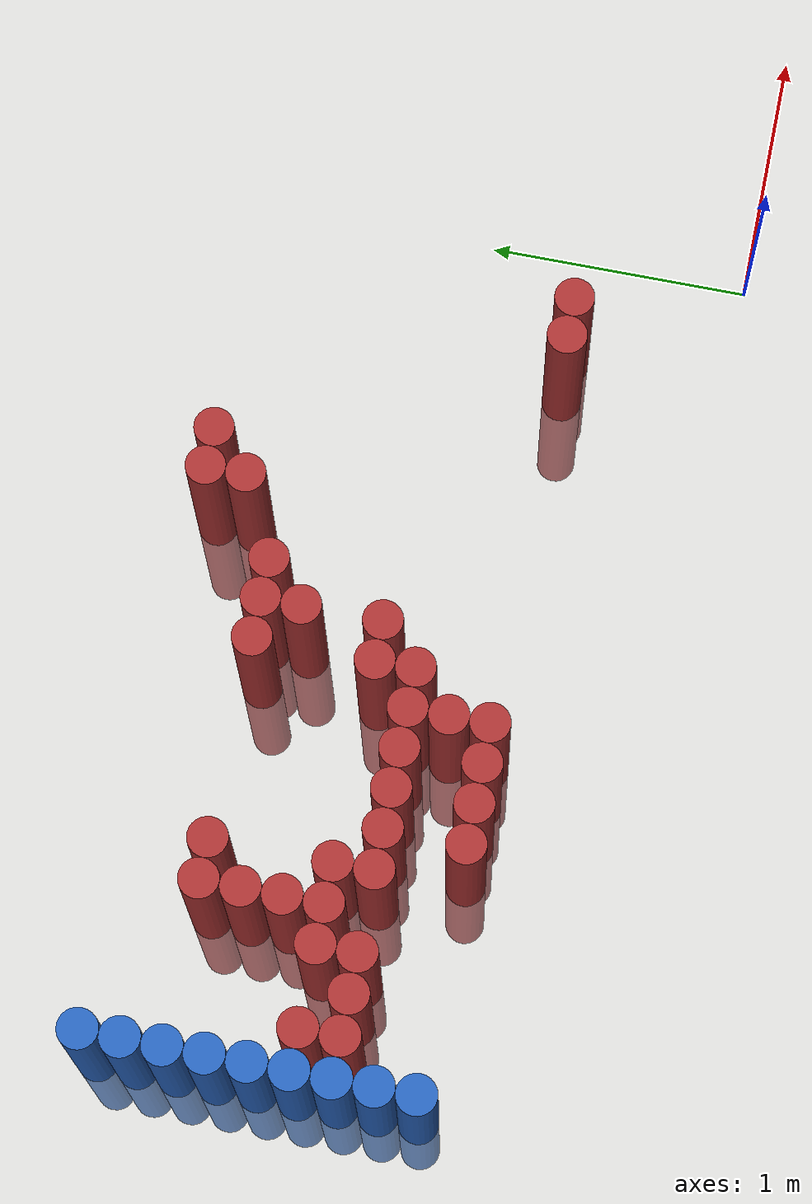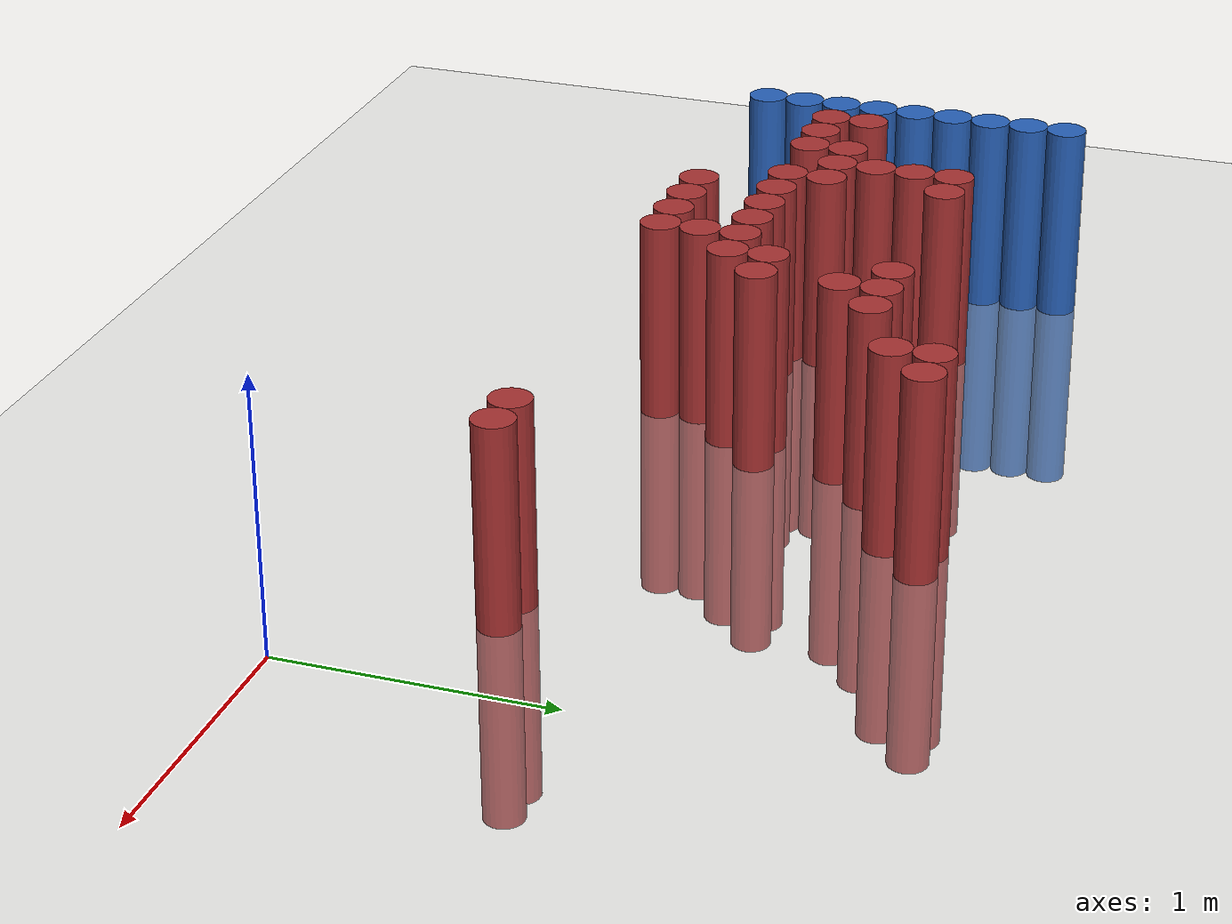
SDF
<sdf version="1.6">
 <world name="default">
  <model name="ground_plane">
   <static>1</static>
   <link name="link">
    <collision name="collision">
     <geometry><plane><normal>0 0 1</normal><size>100 100</size></plane></geometry>
     <surface><friction><ode><mu>100</mu><mu2>50</mu2></ode></friction></surface>
    </collision>
    <visual name="visual">
     <cast_shadows>0</cast_shadows>
     <geometry><plane><normal>0 0 1</normal><size>100 100</size></plane></geometry>
     <material>
      <script><uri>file://media/materials/scripts/gazebo.material</uri><name>Gazebo/Grey</name></script>
     </material>
    </visual>
   </link>
  </model>
  <model name="unit_cylinder_123">
   <static>1</static>
   <pose>-3.425000 0.625000 0.000000 0.000000 0.000000 0.000000</pose>
   <link name="link">
    <inertial>
     <mass>1</mass>
     <inertia><ixx>0.145833</ixx><ixy>0</ixy><ixz>0</ixz><iyy>0.145833</iyy><iyz>0</iyz><izz>0.125</izz></inertia>
    </inertial>
    <collision name="collision">
     <geometry><cylinder><radius>0.075000</radius><length>1.5</length></cylinder></geometry>
    </collision>
    <visual name="visual">
     <geometry><cylinder><radius>0.075000</radius><length>1.5</length></cylinder></geometry>
     <material>
      <ambient>0.152000 0.379000 0.720000 1</ambient>
      <diffuse>0.152000 0.379000 0.720000 1</diffuse>
     </material>
     <material>
      <script><name>Gazebo/Grey</name><uri>file://media/materials/scripts/gazebo.material</uri></script>
     </material>
    </visual>
   </link>
  </model>
  <model name="unit_cylinder_125">
   <static>1</static>
   <pose>-3.425000 0.775000 0.000000 0.000000 0.000000 0.000000</pose>
   <link name="link">
    <inertial>
     <mass>1</mass>
     <inertia><ixx>0.145833</ixx><ixy>0</ixy><ixz>0</ixz><iyy>0.145833</iyy><iyz>0</iyz><izz>0.125</izz></inertia>
    </inertial>
    <collision name="collision">
     <geometry><cylinder><radius>0.075000</radius><length>1.5</length></cylinder></geometry>
    </collision>
    <visual name="visual">
     <geometry><cylinder><radius>0.075000</radius><length>1.5</length></cylinder></geometry>
     <material>
      <ambient>0.152000 0.379000 0.720000 1</ambient>
      <diffuse>0.152000 0.379000 0.720000 1</diffuse>
     </material>
     <material>
      <script><name>Gazebo/Grey</name><uri>file://media/materials/scripts/gazebo.material</uri></script>
     </material>
    </visual>
   </link>
  </model>
  <model name="unit_cylinder_127">
   <static>1</static>
   <pose>-3.425000 0.925000 0.000000 0.000000 0.000000 0.000000</pose>
   <link name="link">
    <inertial>
     <mass>1</mass>
     <inertia><ixx>0.145833</ixx><ixy>0</ixy><ixz>0</ixz><iyy>0.145833</iyy><iyz>0</iyz><izz>0.125</izz></inertia>
    </inertial>
    <collision name="collision">
     <geometry><cylinder><radius>0.075000</radius><length>1.5</length></cylinder></geometry>
    </collision>
    <visual name="visual">
     <geometry><cylinder><radius>0.075000</radius><length>1.5</length></cylinder></geometry>
     <material>
      <ambient>0.152000 0.379000 0.720000 1</ambient>
      <diffuse>0.152000 0.379000 0.720000 1</diffuse>
     </material>
     <material>
      <script><name>Gazebo/Grey</name><uri>file://media/materials/scripts/gazebo.material</uri></script>
     </material>
    </visual>
   </link>
  </model>
  <model name="unit_cylinder_129">
   <static>1</static>
   <pose>-3.425000 1.075000 0.000000 0.000000 0.000000 0.000000</pose>
   <link name="link">
    <inertial>
     <mass>1</mass>
     <inertia><ixx>0.145833</ixx><ixy>0</ixy><ixz>0</ixz><iyy>0.145833</iyy><iyz>0</iyz><izz>0.125</izz></inertia>
    </inertial>
    <collision name="collision">
     <geometry><cylinder><radius>0.075000</radius><length>1.5</length></cylinder></geometry>
    </collision>
    <visual name="visual">
     <geometry><cylinder><radius>0.075000</radius><length>1.5</length></cylinder></geometry>
     <material>
      <ambient>0.152000 0.379000 0.720000 1</ambient>
      <diffuse>0.152000 0.379000 0.720000 1</diffuse>
     </material>
     <material>
      <script><name>Gazebo/Grey</name><uri>file://media/materials/scripts/gazebo.material</uri></script>
     </material>
    </visual>
   </link>
  </model>
  <model name="unit_cylinder_131">
   <static>1</static>
   <pose>-3.425000 1.225000 0.000000 0.000000 0.000000 0.000000</pose>
   <link name="link">
    <inertial>
     <mass>1</mass>
     <inertia><ixx>0.145833</ixx><ixy>0</ixy><ixz>0</ixz><iyy>0.145833</iyy><iyz>0</iyz><izz>0.125</izz></inertia>
    </inertial>
    <collision name="collision">
     <geometry><cylinder><radius>0.075000</radius><length>1.5</length></cylinder></geometry>
    </collision>
    <visual name="visual">
     <geometry><cylinder><radius>0.075000</radius><length>1.5</length></cylinder></geometry>
     <material>
      <ambient>0.152000 0.379000 0.720000 1</ambient>
      <diffuse>0.152000 0.379000 0.720000 1</diffuse>
     </material>
     <material>
      <script><name>Gazebo/Grey</name><uri>file://media/materials/scripts/gazebo.material</uri></script>
     </material>
    </visual>
   </link>
  </model>
  <model name="unit_cylinder_133">
   <static>1</static>
   <pose>-3.425000 1.375000 0.000000 0.000000 0.000000 0.000000</pose>
   <link name="link">
    <inertial>
     <mass>1</mass>
     <inertia><ixx>0.145833</ixx><ixy>0</ixy><ixz>0</ixz><iyy>0.145833</iyy><iyz>0</iyz><izz>0.125</izz></inertia>
    </inertial>
    <collision name="collision">
     <geometry><cylinder><radius>0.075000</radius><length>1.5</length></cylinder></geometry>
    </collision>
    <visual name="visual">
     <geometry><cylinder><radius>0.075000</radius><length>1.5</length></cylinder></geometry>
     <material>
      <ambient>0.152000 0.379000 0.720000 1</ambient>
      <diffuse>0.152000 0.379000 0.720000 1</diffuse>
     </material>
     <material>
      <script><name>Gazebo/Grey</name><uri>file://media/materials/scripts/gazebo.material</uri></script>
     </material>
    </visual>
   </link>
  </model>
  <model name="unit_cylinder_135">
   <static>1</static>
   <pose>-3.425000 1.525000 0.000000 0.000000 0.000000 0.000000</pose>
   <link name="link">
    <inertial>
     <mass>1</mass>
     <inertia><ixx>0.145833</ixx><ixy>0</ixy><ixz>0</ixz><iyy>0.145833</iyy><iyz>0</iyz><izz>0.125</izz></inertia>
    </inertial>
    <collision name="collision">
     <geometry><cylinder><radius>0.075000</radius><length>1.5</length></cylinder></geometry>
    </collision>
    <visual name="visual">
     <geometry><cylinder><radius>0.075000</radius><length>1.5</length></cylinder></geometry>
     <material>
      <ambient>0.152000 0.379000 0.720000 1</ambient>
      <diffuse>0.152000 0.379000 0.720000 1</diffuse>
     </material>
     <material>
      <script><name>Gazebo/Grey</name><uri>file://media/materials/scripts/gazebo.material</uri></script>
     </material>
    </visual>
   </link>
  </model>
  <model name="unit_cylinder_137">
   <static>1</static>
   <pose>-3.425000 1.675000 0.000000 0.000000 0.000000 0.000000</pose>
   <link name="link">
    <inertial>
     <mass>1</mass>
     <inertia><ixx>0.145833</ixx><ixy>0</ixy><ixz>0</ixz><iyy>0.145833</iyy><iyz>0</iyz><izz>0.125</izz></inertia>
    </inertial>
    <collision name="collision">
     <geometry><cylinder><radius>0.075000</radius><length>1.5</length></cylinder></geometry>
    </collision>
    <visual name="visual">
     <geometry><cylinder><radius>0.075000</radius><length>1.5</length></cylinder></geometry>
     <material>
      <ambient>0.152000 0.379000 0.720000 1</ambient>
      <diffuse>0.152000 0.379000 0.720000 1</diffuse>
     </material>
     <material>
      <script><name>Gazebo/Grey</name><uri>file://media/materials/scripts/gazebo.material</uri></script>
     </material>
    </visual>
   </link>
  </model>
  <model name="unit_cylinder_139">
   <static>1</static>
   <pose>-3.425000 1.825000 0.000000 0.000000 0.000000 0.000000</pose>
   <link name="link">
    <inertial>
     <mass>1</mass>
     <inertia><ixx>0.145833</ixx><ixy>0</ixy><ixz>0</ixz><iyy>0.145833</iyy><iyz>0</iyz><izz>0.125</izz></inertia>
    </inertial>
    <collision name="collision">
     <geometry><cylinder><radius>0.075000</radius><length>1.5</length></cylinder></geometry>
    </collision>
    <visual name="visual">
     <geometry><cylinder><radius>0.075000</radius><length>1.5</length></cylinder></geometry>
     <material>
      <ambient>0.152000 0.379000 0.720000 1</ambient>
      <diffuse>0.152000 0.379000 0.720000 1</diffuse>
     </material>
     <material>
      <script><name>Gazebo/Grey</name><uri>file://media/materials/scripts/gazebo.material</uri></script>
     </material>
    </visual>
   </link>
  </model>
  <model name="unit_cylinder_225">
   <static>1</static>
   <pose>-3.425000 0.625000 0.000000 0.000000 0.000000 0.000000</pose>
   <link name="link">
    <inertial>
     <mass>1</mass>
     <inertia><ixx>0.145833</ixx><ixy>0</ixy><ixz>0</ixz><iyy>0.145833</iyy><iyz>0</iyz><izz>0.125</izz></inertia>
    </inertial>
    <collision name="collision">
     <geometry><cylinder><radius>0.075000</radius><length>1.5</length></cylinder></geometry>
    </collision>
    <visual name="visual">
     <geometry><cylinder><radius>0.075000</radius><length>1.5</length></cylinder></geometry>
     <material>
      <ambient>0.152000 0.379000 0.720000 1</ambient>
      <diffuse>0.152000 0.379000 0.720000 1</diffuse>
     </material>
     <material>
      <script><name>Gazebo/Grey</name><uri>file://media/materials/scripts/gazebo.material</uri></script>
     </material>
    </visual>
   </link>
  </model>
  <model name="unit_cylinder_226">
   <static>1</static>
   <pose>-3.425000 0.775000 0.000000 0.000000 0.000000 0.000000</pose>
   <link name="link">
    <inertial>
     <mass>1</mass>
     <inertia><ixx>0.145833</ixx><ixy>0</ixy><ixz>0</ixz><iyy>0.145833</iyy><iyz>0</iyz><izz>0.125</izz></inertia>
    </inertial>
    <collision name="collision">
     <geometry><cylinder><radius>0.075000</radius><length>1.5</length></cylinder></geometry>
    </collision>
    <visual name="visual">
     <geometry><cylinder><radius>0.075000</radius><length>1.5</length></cylinder></geometry>
     <material>
      <ambient>0.152000 0.379000 0.720000 1</ambient>
      <diffuse>0.152000 0.379000 0.720000 1</diffuse>
     </material>
     <material>
      <script><name>Gazebo/Grey</name><uri>file://media/materials/scripts/gazebo.material</uri></script>
     </material>
    </visual>
   </link>
  </model>
  <model name="unit_cylinder_227">
   <static>1</static>
   <pose>-3.425000 0.925000 0.000000 0.000000 0.000000 0.000000</pose>
   <link name="link">
    <inertial>
     <mass>1</mass>
     <inertia><ixx>0.145833</ixx><ixy>0</ixy><ixz>0</ixz><iyy>0.145833</iyy><iyz>0</iyz><izz>0.125</izz></inertia>
    </inertial>
    <collision name="collision">
     <geometry><cylinder><radius>0.075000</radius><length>1.5</length></cylinder></geometry>
    </collision>
    <visual name="visual">
     <geometry><cylinder><radius>0.075000</radius><length>1.5</length></cylinder></geometry>
     <material>
      <ambient>0.152000 0.379000 0.720000 1</ambient>
      <diffuse>0.152000 0.379000 0.720000 1</diffuse>
     </material>
     <material>
      <script><name>Gazebo/Grey</name><uri>file://media/materials/scripts/gazebo.material</uri></script>
     </material>
    </visual>
   </link>
  </model>
  <model name="unit_cylinder_228">
   <static>1</static>
   <pose>-3.425000 1.075000 0.000000 0.000000 0.000000 0.000000</pose>
   <link name="link">
    <inertial>
     <mass>1</mass>
     <inertia><ixx>0.145833</ixx><ixy>0</ixy><ixz>0</ixz><iyy>0.145833</iyy><iyz>0</iyz><izz>0.125</izz></inertia>
    </inertial>
    <collision name="collision">
     <geometry><cylinder><radius>0.075000</radius><length>1.5</length></cylinder></geometry>
    </collision>
    <visual name="visual">
     <geometry><cylinder><radius>0.075000</radius><length>1.5</length></cylinder></geometry>
     <material>
      <ambient>0.152000 0.379000 0.720000 1</ambient>
      <diffuse>0.152000 0.379000 0.720000 1</diffuse>
     </material>
     <material>
      <script><name>Gazebo/Grey</name><uri>file://media/materials/scripts/gazebo.material</uri></script>
     </material>
    </visual>
   </link>
  </model>
  <model name="unit_cylinder_229">
   <static>1</static>
   <pose>-3.425000 1.225000 0.000000 0.000000 0.000000 0.000000</pose>
   <link name="link">
    <inertial>
     <mass>1</mass>
     <inertia><ixx>0.145833</ixx><ixy>0</ixy><ixz>0</ixz><iyy>0.145833</iyy><iyz>0</iyz><izz>0.125</izz></inertia>
    </inertial>
    <collision name="collision">
     <geometry><cylinder><radius>0.075000</radius><length>1.5</length></cylinder></geometry>
    </collision>
    <visual name="visual">
     <geometry><cylinder><radius>0.075000</radius><length>1.5</length></cylinder></geometry>
     <material>
      <ambient>0.152000 0.379000 0.720000 1</ambient>
      <diffuse>0.152000 0.379000 0.720000 1</diffuse>
     </material>
     <material>
      <script><name>Gazebo/Grey</name><uri>file://media/materials/scripts/gazebo.material</uri></script>
     </material>
    </visual>
   </link>
  </model>
  <model name="unit_cylinder_230">
   <static>1</static>
   <pose>-3.425000 1.375000 0.000000 0.000000 0.000000 0.000000</pose>
   <link name="link">
    <inertial>
     <mass>1</mass>
     <inertia><ixx>0.145833</ixx><ixy>0</ixy><ixz>0</ixz><iyy>0.145833</iyy><iyz>0</iyz><izz>0.125</izz></inertia>
    </inertial>
    <collision name="collision">
     <geometry><cylinder><radius>0.075000</radius><length>1.5</length></cylinder></geometry>
    </collision>
    <visual name="visual">
     <geometry><cylinder><radius>0.075000</radius><length>1.5</length></cylinder></geometry>
     <material>
      <ambient>0.152000 0.379000 0.720000 1</ambient>
      <diffuse>0.152000 0.379000 0.720000 1</diffuse>
     </material>
     <material>
      <script><name>Gazebo/Grey</name><uri>file://media/materials/scripts/gazebo.material</uri></script>
     </material>
    </visual>
   </link>
  </model>
  <model name="unit_cylinder_231">
   <static>1</static>
   <pose>-3.425000 1.525000 0.000000 0.000000 0.000000 0.000000</pose>
   <link name="link">
    <inertial>
     <mass>1</mass>
     <inertia><ixx>0.145833</ixx><ixy>0</ixy><ixz>0</ixz><iyy>0.145833</iyy><iyz>0</iyz><izz>0.125</izz></inertia>
    </inertial>
    <collision name="collision">
     <geometry><cylinder><radius>0.075000</radius><length>1.5</length></cylinder></geometry>
    </collision>
    <visual name="visual">
     <geometry><cylinder><radius>0.075000</radius><length>1.5</length></cylinder></geometry>
     <material>
      <ambient>0.152000 0.379000 0.720000 1</ambient>
      <diffuse>0.152000 0.379000 0.720000 1</diffuse>
     </material>
     <material>
      <script><name>Gazebo/Grey</name><uri>file://media/materials/scripts/gazebo.material</uri></script>
     </material>
    </visual>
   </link>
  </model>
  <model name="unit_cylinder_232">
   <static>1</static>
   <pose>-3.425000 1.675000 0.000000 0.000000 0.000000 0.000000</pose>
   <link name="link">
    <inertial>
     <mass>1</mass>
     <inertia><ixx>0.145833</ixx><ixy>0</ixy><ixz>0</ixz><iyy>0.145833</iyy><iyz>0</iyz><izz>0.125</izz></inertia>
    </inertial>
    <collision name="collision">
     <geometry><cylinder><radius>0.075000</radius><length>1.5</length></cylinder></geometry>
    </collision>
    <visual name="visual">
     <geometry><cylinder><radius>0.075000</radius><length>1.5</length></cylinder></geometry>
     <material>
      <ambient>0.152000 0.379000 0.720000 1</ambient>
      <diffuse>0.152000 0.379000 0.720000 1</diffuse>
     </material>
     <material>
      <script><name>Gazebo/Grey</name><uri>file://media/materials/scripts/gazebo.material</uri></script>
     </material>
    </visual>
   </link>
  </model>
  <model name="unit_cylinder_233">
   <static>1</static>
   <pose>-3.425000 1.825000 0.000000 0.000000 0.000000 0.000000</pose>
   <link name="link">
    <inertial>
     <mass>1</mass>
     <inertia><ixx>0.145833</ixx><ixy>0</ixy><ixz>0</ixz><iyy>0.145833</iyy><iyz>0</iyz><izz>0.125</izz></inertia>
    </inertial>
    <collision name="collision">
     <geometry><cylinder><radius>0.075000</radius><length>1.5</length></cylinder></geometry>
    </collision>
    <visual name="visual">
     <geometry><cylinder><radius>0.075000</radius><length>1.5</length></cylinder></geometry>
     <material>
      <ambient>0.152000 0.379000 0.720000 1</ambient>
      <diffuse>0.152000 0.379000 0.720000 1</diffuse>
     </material>
     <material>
      <script><name>Gazebo/Grey</name><uri>file://media/materials/scripts/gazebo.material</uri></script>
     </material>
    </visual>
   </link>
  </model>
  <model name="unit_cylinder_266">
   <static>1</static>
   <pose>-3.275000 0.925000 0.000000 0.000000 0.000000 0.000000</pose>
   <link name="link">
    <inertial>
     <mass>1</mass>
     <inertia><ixx>0.145833</ixx><ixy>0</ixy><ixz>0</ixz><iyy>0.145833</iyy><iyz>0</iyz><izz>0.125</izz></inertia>
    </inertial>
    <collision name="collision">
     <geometry><cylinder><radius>0.075000</radius><length>1.5</length></cylinder></geometry>
    </collision>
    <visual name="visual">
     <geometry><cylinder><radius>0.075000</radius><length>1.5</length></cylinder></geometry>
     <material>
      <ambient>0.648000 0.192000 0.192000 1</ambient>
      <diffuse>0.648000 0.192000 0.192000 1</diffuse>
     </material>
     <material>
      <script><name>Gazebo/Grey</name><uri>file://media/materials/scripts/gazebo.material</uri></script>
     </material>
    </visual>
   </link>
  </model>
  <model name="unit_cylinder_267">
   <static>1</static>
   <pose>-3.275000 1.075000 0.000000 0.000000 0.000000 0.000000</pose>
   <link name="link">
    <inertial>
     <mass>1</mass>
     <inertia><ixx>0.145833</ixx><ixy>0</ixy><ixz>0</ixz><iyy>0.145833</iyy><iyz>0</iyz><izz>0.125</izz></inertia>
    </inertial>
    <collision name="collision">
     <geometry><cylinder><radius>0.075000</radius><length>1.5</length></cylinder></geometry>
    </collision>
    <visual name="visual">
     <geometry><cylinder><radius>0.075000</radius><length>1.5</length></cylinder></geometry>
     <material>
      <ambient>0.648000 0.192000 0.192000 1</ambient>
      <diffuse>0.648000 0.192000 0.192000 1</diffuse>
     </material>
     <material>
      <script><name>Gazebo/Grey</name><uri>file://media/materials/scripts/gazebo.material</uri></script>
     </material>
    </visual>
   </link>
  </model>
  <model name="unit_cylinder_285">
   <static>1</static>
   <pose>-3.125000 0.925000 0.000000 0.000000 0.000000 0.000000</pose>
   <link name="link">
    <inertial>
     <mass>1</mass>
     <inertia><ixx>0.145833</ixx><ixy>0</ixy><ixz>0</ixz><iyy>0.145833</iyy><iyz>0</iyz><izz>0.125</izz></inertia>
    </inertial>
    <collision name="collision">
     <geometry><cylinder><radius>0.075000</radius><length>1.5</length></cylinder></geometry>
    </collision>
    <visual name="visual">
     <geometry><cylinder><radius>0.075000</radius><length>1.5</length></cylinder></geometry>
     <material>
      <ambient>0.648000 0.192000 0.192000 1</ambient>
      <diffuse>0.648000 0.192000 0.192000 1</diffuse>
     </material>
     <material>
      <script><name>Gazebo/Grey</name><uri>file://media/materials/scripts/gazebo.material</uri></script>
     </material>
    </visual>
   </link>
  </model>
  <model name="unit_cylinder_291">
   <static>1</static>
   <pose>-2.975000 0.925000 0.000000 0.000000 0.000000 0.000000</pose>
   <link name="link">
    <inertial>
     <mass>1</mass>
     <inertia><ixx>0.145833</ixx><ixy>0</ixy><ixz>0</ixz><iyy>0.145833</iyy><iyz>0</iyz><izz>0.125</izz></inertia>
    </inertial>
    <collision name="collision">
     <geometry><cylinder><radius>0.075000</radius><length>1.5</length></cylinder></geometry>
    </collision>
    <visual name="visual">
     <geometry><cylinder><radius>0.075000</radius><length>1.5</length></cylinder></geometry>
     <material>
      <ambient>0.648000 0.192000 0.192000 1</ambient>
      <diffuse>0.648000 0.192000 0.192000 1</diffuse>
     </material>
     <material>
      <script><name>Gazebo/Grey</name><uri>file://media/materials/scripts/gazebo.material</uri></script>
     </material>
    </visual>
   </link>
  </model>
  <model name="unit_cylinder_292">
   <static>1</static>
   <pose>-2.975000 1.075000 0.000000 0.000000 0.000000 0.000000</pose>
   <link name="link">
    <inertial>
     <mass>1</mass>
     <inertia><ixx>0.145833</ixx><ixy>0</ixy><ixz>0</ixz><iyy>0.145833</iyy><iyz>0</iyz><izz>0.125</izz></inertia>
    </inertial>
    <collision name="collision">
     <geometry><cylinder><radius>0.075000</radius><length>1.5</length></cylinder></geometry>
    </collision>
    <visual name="visual">
     <geometry><cylinder><radius>0.075000</radius><length>1.5</length></cylinder></geometry>
     <material>
      <ambient>0.648000 0.192000 0.192000 1</ambient>
      <diffuse>0.648000 0.192000 0.192000 1</diffuse>
     </material>
     <material>
      <script><name>Gazebo/Grey</name><uri>file://media/materials/scripts/gazebo.material</uri></script>
     </material>
    </visual>
   </link>
  </model>
  <model name="unit_cylinder_299">
   <static>1</static>
   <pose>-2.825000 1.075000 0.000000 0.000000 0.000000 0.000000</pose>
   <link name="link">
    <inertial>
     <mass>1</mass>
     <inertia><ixx>0.145833</ixx><ixy>0</ixy><ixz>0</ixz><iyy>0.145833</iyy><iyz>0</iyz><izz>0.125</izz></inertia>
    </inertial>
    <collision name="collision">
     <geometry><cylinder><radius>0.075000</radius><length>1.5</length></cylinder></geometry>
    </collision>
    <visual name="visual">
     <geometry><cylinder><radius>0.075000</radius><length>1.5</length></cylinder></geometry>
     <material>
      <ambient>0.648000 0.192000 0.192000 1</ambient>
      <diffuse>0.648000 0.192000 0.192000 1</diffuse>
     </material>
     <material>
      <script><name>Gazebo/Grey</name><uri>file://media/materials/scripts/gazebo.material</uri></script>
     </material>
    </visual>
   </link>
  </model>
  <model name="unit_cylinder_300">
   <static>1</static>
   <pose>-2.825000 1.225000 0.000000 0.000000 0.000000 0.000000</pose>
   <link name="link">
    <inertial>
     <mass>1</mass>
     <inertia><ixx>0.145833</ixx><ixy>0</ixy><ixz>0</ixz><iyy>0.145833</iyy><iyz>0</iyz><izz>0.125</izz></inertia>
    </inertial>
    <collision name="collision">
     <geometry><cylinder><radius>0.075000</radius><length>1.5</length></cylinder></geometry>
    </collision>
    <visual name="visual">
     <geometry><cylinder><radius>0.075000</radius><length>1.5</length></cylinder></geometry>
     <material>
      <ambient>0.648000 0.192000 0.192000 1</ambient>
      <diffuse>0.648000 0.192000 0.192000 1</diffuse>
     </material>
     <material>
      <script><name>Gazebo/Grey</name><uri>file://media/materials/scripts/gazebo.material</uri></script>
     </material>
    </visual>
   </link>
  </model>
  <model name="unit_cylinder_301">
   <static>1</static>
   <pose>-2.825000 1.375000 0.000000 0.000000 0.000000 0.000000</pose>
   <link name="link">
    <inertial>
     <mass>1</mass>
     <inertia><ixx>0.145833</ixx><ixy>0</ixy><ixz>0</ixz><iyy>0.145833</iyy><iyz>0</iyz><izz>0.125</izz></inertia>
    </inertial>
    <collision name="collision">
     <geometry><cylinder><radius>0.075000</radius><length>1.5</length></cylinder></geometry>
    </collision>
    <visual name="visual">
     <geometry><cylinder><radius>0.075000</radius><length>1.5</length></cylinder></geometry>
     <material>
      <ambient>0.648000 0.192000 0.192000 1</ambient>
      <diffuse>0.648000 0.192000 0.192000 1</diffuse>
     </material>
     <material>
      <script><name>Gazebo/Grey</name><uri>file://media/materials/scripts/gazebo.material</uri></script>
     </material>
    </visual>
   </link>
  </model>
  <model name="unit_cylinder_302">
   <static>1</static>
   <pose>-2.825000 1.525000 0.000000 0.000000 0.000000 0.000000</pose>
   <link name="link">
    <inertial>
     <mass>1</mass>
     <inertia><ixx>0.145833</ixx><ixy>0</ixy><ixz>0</ixz><iyy>0.145833</iyy><iyz>0</iyz><izz>0.125</izz></inertia>
    </inertial>
    <collision name="collision">
     <geometry><cylinder><radius>0.075000</radius><length>1.5</length></cylinder></geometry>
    </collision>
    <visual name="visual">
     <geometry><cylinder><radius>0.075000</radius><length>1.5</length></cylinder></geometry>
     <material>
      <ambient>0.648000 0.192000 0.192000 1</ambient>
      <diffuse>0.648000 0.192000 0.192000 1</diffuse>
     </material>
     <material>
      <script><name>Gazebo/Grey</name><uri>file://media/materials/scripts/gazebo.material</uri></script>
     </material>
    </visual>
   </link>
  </model>
  <model name="unit_cylinder_310">
   <static>1</static>
   <pose>-2.675000 0.925000 0.000000 0.000000 0.000000 0.000000</pose>
   <link name="link">
    <inertial>
     <mass>1</mass>
     <inertia><ixx>0.145833</ixx><ixy>0</ixy><ixz>0</ixz><iyy>0.145833</iyy><iyz>0</iyz><izz>0.125</izz></inertia>
    </inertial>
    <collision name="collision">
     <geometry><cylinder><radius>0.075000</radius><length>1.5</length></cylinder></geometry>
    </collision>
    <visual name="visual">
     <geometry><cylinder><radius>0.075000</radius><length>1.5</length></cylinder></geometry>
     <material>
      <ambient>0.648000 0.192000 0.192000 1</ambient>
      <diffuse>0.648000 0.192000 0.192000 1</diffuse>
     </material>
     <material>
      <script><name>Gazebo/Grey</name><uri>file://media/materials/scripts/gazebo.material</uri></script>
     </material>
    </visual>
   </link>
  </model>
  <model name="unit_cylinder_311">
   <static>1</static>
   <pose>-2.675000 1.075000 0.000000 0.000000 0.000000 0.000000</pose>
   <link name="link">
    <inertial>
     <mass>1</mass>
     <inertia><ixx>0.145833</ixx><ixy>0</ixy><ixz>0</ixz><iyy>0.145833</iyy><iyz>0</iyz><izz>0.125</izz></inertia>
    </inertial>
    <collision name="collision">
     <geometry><cylinder><radius>0.075000</radius><length>1.5</length></cylinder></geometry>
    </collision>
    <visual name="visual">
     <geometry><cylinder><radius>0.075000</radius><length>1.5</length></cylinder></geometry>
     <material>
      <ambient>0.648000 0.192000 0.192000 1</ambient>
      <diffuse>0.648000 0.192000 0.192000 1</diffuse>
     </material>
     <material>
      <script><name>Gazebo/Grey</name><uri>file://media/materials/scripts/gazebo.material</uri></script>
     </material>
    </visual>
   </link>
  </model>
  <model name="unit_cylinder_312">
   <static>1</static>
   <pose>-2.675000 1.525000 0.000000 0.000000 0.000000 0.000000</pose>
   <link name="link">
    <inertial>
     <mass>1</mass>
     <inertia><ixx>0.145833</ixx><ixy>0</ixy><ixz>0</ixz><iyy>0.145833</iyy><iyz>0</iyz><izz>0.125</izz></inertia>
    </inertial>
    <collision name="collision">
     <geometry><cylinder><radius>0.075000</radius><length>1.5</length></cylinder></geometry>
    </collision>
    <visual name="visual">
     <geometry><cylinder><radius>0.075000</radius><length>1.5</length></cylinder></geometry>
     <material>
      <ambient>0.648000 0.192000 0.192000 1</ambient>
      <diffuse>0.648000 0.192000 0.192000 1</diffuse>
     </material>
     <material>
      <script><name>Gazebo/Grey</name><uri>file://media/materials/scripts/gazebo.material</uri></script>
     </material>
    </visual>
   </link>
  </model>
  <model name="unit_cylinder_319">
   <static>1</static>
   <pose>-2.525000 0.625000 0.000000 0.000000 0.000000 0.000000</pose>
   <link name="link">
    <inertial>
     <mass>1</mass>
     <inertia><ixx>0.145833</ixx><ixy>0</ixy><ixz>0</ixz><iyy>0.145833</iyy><iyz>0</iyz><izz>0.125</izz></inertia>
    </inertial>
    <collision name="collision">
     <geometry><cylinder><radius>0.075000</radius><length>1.5</length></cylinder></geometry>
    </collision>
    <visual name="visual">
     <geometry><cylinder><radius>0.075000</radius><length>1.5</length></cylinder></geometry>
     <material>
      <ambient>0.648000 0.192000 0.192000 1</ambient>
      <diffuse>0.648000 0.192000 0.192000 1</diffuse>
     </material>
     <material>
      <script><name>Gazebo/Grey</name><uri>file://media/materials/scripts/gazebo.material</uri></script>
     </material>
    </visual>
   </link>
  </model>
  <model name="unit_cylinder_320">
   <static>1</static>
   <pose>-2.525000 0.925000 0.000000 0.000000 0.000000 0.000000</pose>
   <link name="link">
    <inertial>
     <mass>1</mass>
     <inertia><ixx>0.145833</ixx><ixy>0</ixy><ixz>0</ixz><iyy>0.145833</iyy><iyz>0</iyz><izz>0.125</izz></inertia>
    </inertial>
    <collision name="collision">
     <geometry><cylinder><radius>0.075000</radius><length>1.5</length></cylinder></geometry>
    </collision>
    <visual name="visual">
     <geometry><cylinder><radius>0.075000</radius><length>1.5</length></cylinder></geometry>
     <material>
      <ambient>0.648000 0.192000 0.192000 1</ambient>
      <diffuse>0.648000 0.192000 0.192000 1</diffuse>
     </material>
     <material>
      <script><name>Gazebo/Grey</name><uri>file://media/materials/scripts/gazebo.material</uri></script>
     </material>
    </visual>
   </link>
  </model>
  <model name="unit_cylinder_325">
   <static>1</static>
   <pose>-2.375000 0.625000 0.000000 0.000000 0.000000 0.000000</pose>
   <link name="link">
    <inertial>
     <mass>1</mass>
     <inertia><ixx>0.145833</ixx><ixy>0</ixy><ixz>0</ixz><iyy>0.145833</iyy><iyz>0</iyz><izz>0.125</izz></inertia>
    </inertial>
    <collision name="collision">
     <geometry><cylinder><radius>0.075000</radius><length>1.5</length></cylinder></geometry>
    </collision>
    <visual name="visual">
     <geometry><cylinder><radius>0.075000</radius><length>1.5</length></cylinder></geometry>
     <material>
      <ambient>0.648000 0.192000 0.192000 1</ambient>
      <diffuse>0.648000 0.192000 0.192000 1</diffuse>
     </material>
     <material>
      <script><name>Gazebo/Grey</name><uri>file://media/materials/scripts/gazebo.material</uri></script>
     </material>
    </visual>
   </link>
  </model>
  <model name="unit_cylinder_326">
   <static>1</static>
   <pose>-2.375000 0.925000 0.000000 0.000000 0.000000 0.000000</pose>
   <link name="link">
    <inertial>
     <mass>1</mass>
     <inertia><ixx>0.145833</ixx><ixy>0</ixy><ixz>0</ixz><iyy>0.145833</iyy><iyz>0</iyz><izz>0.125</izz></inertia>
    </inertial>
    <collision name="collision">
     <geometry><cylinder><radius>0.075000</radius><length>1.5</length></cylinder></geometry>
    </collision>
    <visual name="visual">
     <geometry><cylinder><radius>0.075000</radius><length>1.5</length></cylinder></geometry>
     <material>
      <ambient>0.648000 0.192000 0.192000 1</ambient>
      <diffuse>0.648000 0.192000 0.192000 1</diffuse>
     </material>
     <material>
      <script><name>Gazebo/Grey</name><uri>file://media/materials/scripts/gazebo.material</uri></script>
     </material>
    </visual>
   </link>
  </model>
  <model name="unit_cylinder_332">
   <static>1</static>
   <pose>-2.225000 0.625000 0.000000 0.000000 0.000000 0.000000</pose>
   <link name="link">
    <inertial>
     <mass>1</mass>
     <inertia><ixx>0.145833</ixx><ixy>0</ixy><ixz>0</ixz><iyy>0.145833</iyy><iyz>0</iyz><izz>0.125</izz></inertia>
    </inertial>
    <collision name="collision">
     <geometry><cylinder><radius>0.075000</radius><length>1.5</length></cylinder></geometry>
    </collision>
    <visual name="visual">
     <geometry><cylinder><radius>0.075000</radius><length>1.5</length></cylinder></geometry>
     <material>
      <ambient>0.648000 0.192000 0.192000 1</ambient>
      <diffuse>0.648000 0.192000 0.192000 1</diffuse>
     </material>
     <material>
      <script><name>Gazebo/Grey</name><uri>file://media/materials/scripts/gazebo.material</uri></script>
     </material>
    </visual>
   </link>
  </model>
  <model name="unit_cylinder_333">
   <static>1</static>
   <pose>-2.225000 0.925000 0.000000 0.000000 0.000000 0.000000</pose>
   <link name="link">
    <inertial>
     <mass>1</mass>
     <inertia><ixx>0.145833</ixx><ixy>0</ixy><ixz>0</ixz><iyy>0.145833</iyy><iyz>0</iyz><izz>0.125</izz></inertia>
    </inertial>
    <collision name="collision">
     <geometry><cylinder><radius>0.075000</radius><length>1.5</length></cylinder></geometry>
    </collision>
    <visual name="visual">
     <geometry><cylinder><radius>0.075000</radius><length>1.5</length></cylinder></geometry>
     <material>
      <ambient>0.648000 0.192000 0.192000 1</ambient>
      <diffuse>0.648000 0.192000 0.192000 1</diffuse>
     </material>
     <material>
      <script><name>Gazebo/Grey</name><uri>file://media/materials/scripts/gazebo.material</uri></script>
     </material>
    </visual>
   </link>
  </model>
  <model name="unit_cylinder_340">
   <static>1</static>
   <pose>-2.075000 0.625000 0.000000 0.000000 0.000000 0.000000</pose>
   <link name="link">
    <inertial>
     <mass>1</mass>
     <inertia><ixx>0.145833</ixx><ixy>0</ixy><ixz>0</ixz><iyy>0.145833</iyy><iyz>0</iyz><izz>0.125</izz></inertia>
    </inertial>
    <collision name="collision">
     <geometry><cylinder><radius>0.075000</radius><length>1.5</length></cylinder></geometry>
    </collision>
    <visual name="visual">
     <geometry><cylinder><radius>0.075000</radius><length>1.5</length></cylinder></geometry>
     <material>
      <ambient>0.648000 0.192000 0.192000 1</ambient>
      <diffuse>0.648000 0.192000 0.192000 1</diffuse>
     </material>
     <material>
      <script><name>Gazebo/Grey</name><uri>file://media/materials/scripts/gazebo.material</uri></script>
     </material>
    </visual>
   </link>
  </model>
  <model name="unit_cylinder_341">
   <static>1</static>
   <pose>-2.075000 0.775000 0.000000 0.000000 0.000000 0.000000</pose>
   <link name="link">
    <inertial>
     <mass>1</mass>
     <inertia><ixx>0.145833</ixx><ixy>0</ixy><ixz>0</ixz><iyy>0.145833</iyy><iyz>0</iyz><izz>0.125</izz></inertia>
    </inertial>
    <collision name="collision">
     <geometry><cylinder><radius>0.075000</radius><length>1.5</length></cylinder></geometry>
    </collision>
    <visual name="visual">
     <geometry><cylinder><radius>0.075000</radius><length>1.5</length></cylinder></geometry>
     <material>
      <ambient>0.648000 0.192000 0.192000 1</ambient>
      <diffuse>0.648000 0.192000 0.192000 1</diffuse>
     </material>
     <material>
      <script><name>Gazebo/Grey</name><uri>file://media/materials/scripts/gazebo.material</uri></script>
     </material>
    </visual>
   </link>
  </model>
  <model name="unit_cylinder_342">
   <static>1</static>
   <pose>-2.075000 0.925000 0.000000 0.000000 0.000000 0.000000</pose>
   <link name="link">
    <inertial>
     <mass>1</mass>
     <inertia><ixx>0.145833</ixx><ixy>0</ixy><ixz>0</ixz><iyy>0.145833</iyy><iyz>0</iyz><izz>0.125</izz></inertia>
    </inertial>
    <collision name="collision">
     <geometry><cylinder><radius>0.075000</radius><length>1.5</length></cylinder></geometry>
    </collision>
    <visual name="visual">
     <geometry><cylinder><radius>0.075000</radius><length>1.5</length></cylinder></geometry>
     <material>
      <ambient>0.648000 0.192000 0.192000 1</ambient>
      <diffuse>0.648000 0.192000 0.192000 1</diffuse>
     </material>
     <material>
      <script><name>Gazebo/Grey</name><uri>file://media/materials/scripts/gazebo.material</uri></script>
     </material>
    </visual>
   </link>
  </model>
  <model name="unit_cylinder_347">
   <static>1</static>
   <pose>-1.925000 0.925000 0.000000 0.000000 0.000000 0.000000</pose>
   <link name="link">
    <inertial>
     <mass>1</mass>
     <inertia><ixx>0.145833</ixx><ixy>0</ixy><ixz>0</ixz><iyy>0.145833</iyy><iyz>0</iyz><izz>0.125</izz></inertia>
    </inertial>
    <collision name="collision">
     <geometry><cylinder><radius>0.075000</radius><length>1.5</length></cylinder></geometry>
    </collision>
    <visual name="visual">
     <geometry><cylinder><radius>0.075000</radius><length>1.5</length></cylinder></geometry>
     <material>
      <ambient>0.648000 0.192000 0.192000 1</ambient>
      <diffuse>0.648000 0.192000 0.192000 1</diffuse>
     </material>
     <material>
      <script><name>Gazebo/Grey</name><uri>file://media/materials/scripts/gazebo.material</uri></script>
     </material>
    </visual>
   </link>
  </model>
  <model name="unit_cylinder_348">
   <static>1</static>
   <pose>-1.925000 1.075000 0.000000 0.000000 0.000000 0.000000</pose>
   <link name="link">
    <inertial>
     <mass>1</mass>
     <inertia><ixx>0.145833</ixx><ixy>0</ixy><ixz>0</ixz><iyy>0.145833</iyy><iyz>0</iyz><izz>0.125</izz></inertia>
    </inertial>
    <collision name="collision">
     <geometry><cylinder><radius>0.075000</radius><length>1.5</length></cylinder></geometry>
    </collision>
    <visual name="visual">
     <geometry><cylinder><radius>0.075000</radius><length>1.5</length></cylinder></geometry>
     <material>
      <ambient>0.648000 0.192000 0.192000 1</ambient>
      <diffuse>0.648000 0.192000 0.192000 1</diffuse>
     </material>
     <material>
      <script><name>Gazebo/Grey</name><uri>file://media/materials/scripts/gazebo.material</uri></script>
     </material>
    </visual>
   </link>
  </model>
  <model name="unit_cylinder_349">
   <static>1</static>
   <pose>-1.925000 1.525000 0.000000 0.000000 0.000000 0.000000</pose>
   <link name="link">
    <inertial>
     <mass>1</mass>
     <inertia><ixx>0.145833</ixx><ixy>0</ixy><ixz>0</ixz><iyy>0.145833</iyy><iyz>0</iyz><izz>0.125</izz></inertia>
    </inertial>
    <collision name="collision">
     <geometry><cylinder><radius>0.075000</radius><length>1.5</length></cylinder></geometry>
    </collision>
    <visual name="visual">
     <geometry><cylinder><radius>0.075000</radius><length>1.5</length></cylinder></geometry>
     <material>
      <ambient>0.648000 0.192000 0.192000 1</ambient>
      <diffuse>0.648000 0.192000 0.192000 1</diffuse>
     </material>
     <material>
      <script><name>Gazebo/Grey</name><uri>file://media/materials/scripts/gazebo.material</uri></script>
     </material>
    </visual>
   </link>
  </model>
  <model name="unit_cylinder_354">
   <static>1</static>
   <pose>-1.775000 1.075000 0.000000 0.000000 0.000000 0.000000</pose>
   <link name="link">
    <inertial>
     <mass>1</mass>
     <inertia><ixx>0.145833</ixx><ixy>0</ixy><ixz>0</ixz><iyy>0.145833</iyy><iyz>0</iyz><izz>0.125</izz></inertia>
    </inertial>
    <collision name="collision">
     <geometry><cylinder><radius>0.075000</radius><length>1.5</length></cylinder></geometry>
    </collision>
    <visual name="visual">
     <geometry><cylinder><radius>0.075000</radius><length>1.5</length></cylinder></geometry>
     <material>
      <ambient>0.648000 0.192000 0.192000 1</ambient>
      <diffuse>0.648000 0.192000 0.192000 1</diffuse>
     </material>
     <material>
      <script><name>Gazebo/Grey</name><uri>file://media/materials/scripts/gazebo.material</uri></script>
     </material>
    </visual>
   </link>
  </model>
  <model name="unit_cylinder_355">
   <static>1</static>
   <pose>-1.775000 1.375000 0.000000 0.000000 0.000000 0.000000</pose>
   <link name="link">
    <inertial>
     <mass>1</mass>
     <inertia><ixx>0.145833</ixx><ixy>0</ixy><ixz>0</ixz><iyy>0.145833</iyy><iyz>0</iyz><izz>0.125</izz></inertia>
    </inertial>
    <collision name="collision">
     <geometry><cylinder><radius>0.075000</radius><length>1.5</length></cylinder></geometry>
    </collision>
    <visual name="visual">
     <geometry><cylinder><radius>0.075000</radius><length>1.5</length></cylinder></geometry>
     <material>
      <ambient>0.648000 0.192000 0.192000 1</ambient>
      <diffuse>0.648000 0.192000 0.192000 1</diffuse>
     </material>
     <material>
      <script><name>Gazebo/Grey</name><uri>file://media/materials/scripts/gazebo.material</uri></script>
     </material>
    </visual>
   </link>
  </model>
  <model name="unit_cylinder_356">
   <static>1</static>
   <pose>-1.775000 1.525000 0.000000 0.000000 0.000000 0.000000</pose>
   <link name="link">
    <inertial>
     <mass>1</mass>
     <inertia><ixx>0.145833</ixx><ixy>0</ixy><ixz>0</ixz><iyy>0.145833</iyy><iyz>0</iyz><izz>0.125</izz></inertia>
    </inertial>
    <collision name="collision">
     <geometry><cylinder><radius>0.075000</radius><length>1.5</length></cylinder></geometry>
    </collision>
    <visual name="visual">
     <geometry><cylinder><radius>0.075000</radius><length>1.5</length></cylinder></geometry>
     <material>
      <ambient>0.648000 0.192000 0.192000 1</ambient>
      <diffuse>0.648000 0.192000 0.192000 1</diffuse>
     </material>
     <material>
      <script><name>Gazebo/Grey</name><uri>file://media/materials/scripts/gazebo.material</uri></script>
     </material>
    </visual>
   </link>
  </model>
  <model name="unit_cylinder_359">
   <static>1</static>
   <pose>-1.625000 1.525000 0.000000 0.000000 0.000000 0.000000</pose>
   <link name="link">
    <inertial>
     <mass>1</mass>
     <inertia><ixx>0.145833</ixx><ixy>0</ixy><ixz>0</ixz><iyy>0.145833</iyy><iyz>0</iyz><izz>0.125</izz></inertia>
    </inertial>
    <collision name="collision">
     <geometry><cylinder><radius>0.075000</radius><length>1.5</length></cylinder></geometry>
    </collision>
    <visual name="visual">
     <geometry><cylinder><radius>0.075000</radius><length>1.5</length></cylinder></geometry>
     <material>
      <ambient>0.648000 0.192000 0.192000 1</ambient>
      <diffuse>0.648000 0.192000 0.192000 1</diffuse>
     </material>
     <material>
      <script><name>Gazebo/Grey</name><uri>file://media/materials/scripts/gazebo.material</uri></script>
     </material>
    </visual>
   </link>
  </model>
  <model name="unit_cylinder_364">
   <static>1</static>
   <pose>-1.325000 1.675000 0.000000 0.000000 0.000000 0.000000</pose>
   <link name="link">
    <inertial>
     <mass>1</mass>
     <inertia><ixx>0.145833</ixx><ixy>0</ixy><ixz>0</ixz><iyy>0.145833</iyy><iyz>0</iyz><izz>0.125</izz></inertia>
    </inertial>
    <collision name="collision">
     <geometry><cylinder><radius>0.075000</radius><length>1.5</length></cylinder></geometry>
    </collision>
    <visual name="visual">
     <geometry><cylinder><radius>0.075000</radius><length>1.5</length></cylinder></geometry>
     <material>
      <ambient>0.648000 0.192000 0.192000 1</ambient>
      <diffuse>0.648000 0.192000 0.192000 1</diffuse>
     </material>
     <material>
      <script><name>Gazebo/Grey</name><uri>file://media/materials/scripts/gazebo.material</uri></script>
     </material>
    </visual>
   </link>
  </model>
  <model name="unit_cylinder_365">
   <static>1</static>
   <pose>-1.325000 1.825000 0.000000 0.000000 0.000000 0.000000</pose>
   <link name="link">
    <inertial>
     <mass>1</mass>
     <inertia><ixx>0.145833</ixx><ixy>0</ixy><ixz>0</ixz><iyy>0.145833</iyy><iyz>0</iyz><izz>0.125</izz></inertia>
    </inertial>
    <collision name="collision">
     <geometry><cylinder><radius>0.075000</radius><length>1.5</length></cylinder></geometry>
    </collision>
    <visual name="visual">
     <geometry><cylinder><radius>0.075000</radius><length>1.5</length></cylinder></geometry>
     <material>
      <ambient>0.648000 0.192000 0.192000 1</ambient>
      <diffuse>0.648000 0.192000 0.192000 1</diffuse>
     </material>
     <material>
      <script><name>Gazebo/Grey</name><uri>file://media/materials/scripts/gazebo.material</uri></script>
     </material>
    </visual>
   </link>
  </model>
  <model name="unit_cylinder_366">
   <static>1</static>
   <pose>-1.175000 1.825000 0.000000 0.000000 0.000000 0.000000</pose>
   <link name="link">
    <inertial>
     <mass>1</mass>
     <inertia><ixx>0.145833</ixx><ixy>0</ixy><ixz>0</ixz><iyy>0.145833</iyy><iyz>0</iyz><izz>0.125</izz></inertia>
    </inertial>
    <collision name="collision">
     <geometry><cylinder><radius>0.075000</radius><length>1.5</length></cylinder></geometry>
    </collision>
    <visual name="visual">
     <geometry><cylinder><radius>0.075000</radius><length>1.5</length></cylinder></geometry>
     <material>
      <ambient>0.648000 0.192000 0.192000 1</ambient>
      <diffuse>0.648000 0.192000 0.192000 1</diffuse>
     </material>
     <material>
      <script><name>Gazebo/Grey</name><uri>file://media/materials/scripts/gazebo.material</uri></script>
     </material>
    </visual>
   </link>
  </model>
  <model name="unit_cylinder_370">
   <static>1</static>
   <pose>-0.575000 0.625000 0.000000 0.000000 0.000000 0.000000</pose>
   <link name="link">
    <inertial>
     <mass>1</mass>
     <inertia><ixx>0.145833</ixx><ixy>0</ixy><ixz>0</ixz><iyy>0.145833</iyy><iyz>0</iyz><izz>0.125</izz></inertia>
    </inertial>
    <collision name="collision">
     <geometry><cylinder><radius>0.075000</radius><length>1.5</length></cylinder></geometry>
    </collision>
    <visual name="visual">
     <geometry><cylinder><radius>0.075000</radius><length>1.5</length></cylinder></geometry>
     <material>
      <ambient>0.648000 0.192000 0.192000 1</ambient>
      <diffuse>0.648000 0.192000 0.192000 1</diffuse>
     </material>
     <material>
      <script><name>Gazebo/Grey</name><uri>file://media/materials/scripts/gazebo.material</uri></script>
     </material>
    </visual>
   </link>
  </model>
  <model name="unit_cylinder_377">
   <static>1</static>
   <pose>-0.425000 0.625000 0.000000 0.000000 0.000000 0.000000</pose>
   <link name="link">
    <inertial>
     <mass>1</mass>
     <inertia><ixx>0.145833</ixx><ixy>0</ixy><ixz>0</ixz><iyy>0.145833</iyy><iyz>0</iyz><izz>0.125</izz></inertia>
    </inertial>
    <collision name="collision">
     <geometry><cylinder><radius>0.075000</radius><length>1.5</length></cylinder></geometry>
    </collision>
    <visual name="visual">
     <geometry><cylinder><radius>0.075000</radius><length>1.5</length></cylinder></geometry>
     <material>
      <ambient>0.648000 0.192000 0.192000 1</ambient>
      <diffuse>0.648000 0.192000 0.192000 1</diffuse>
     </material>
     <material>
      <script><name>Gazebo/Grey</name><uri>file://media/materials/scripts/gazebo.material</uri></script>
     </material>
    </visual>
   </link>
  </model>
 </world>
</sdf>
